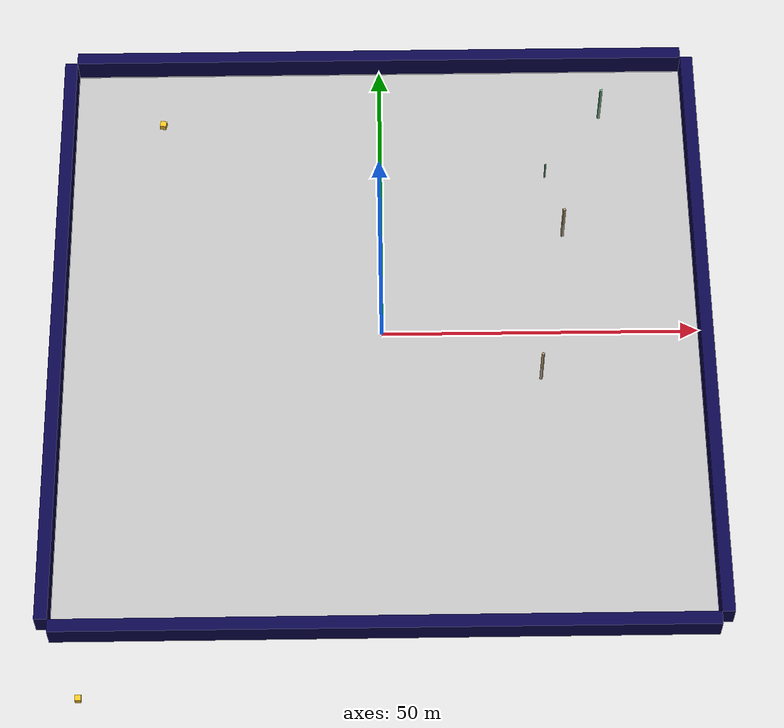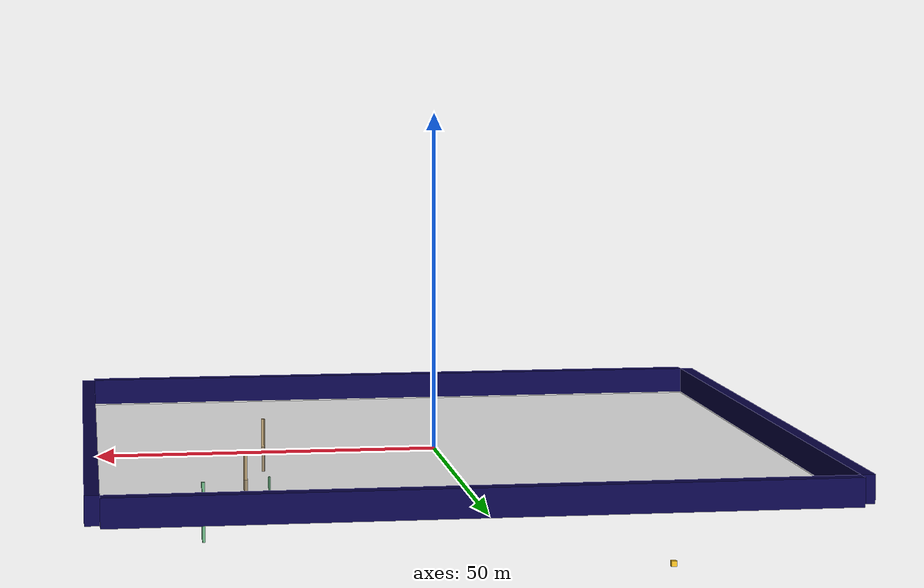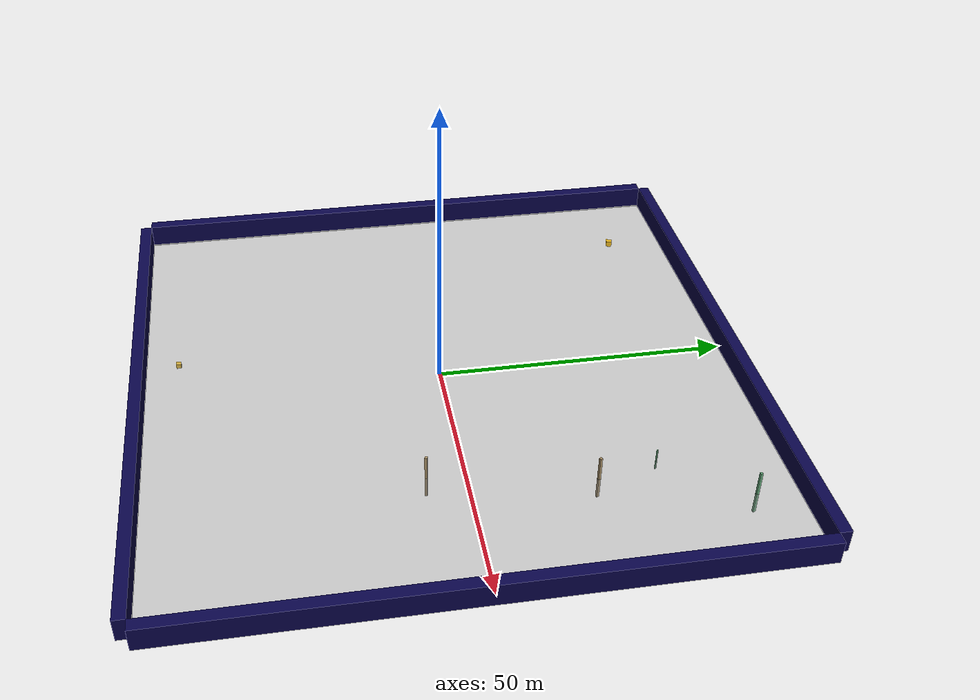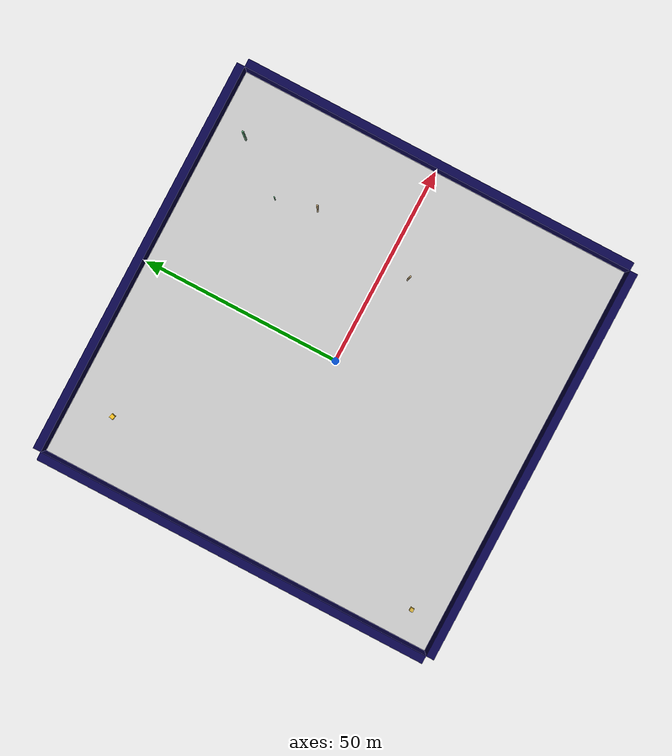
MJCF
<mujoco model="unnamed_model">
  <default>
    <default class="/" />
    <default class="border/" />
    <default class="border_1/" />
    <default class="border_2/" />
    <default class="border_3/" />
    <default class="placeholder/" />
    <default class="agent/" />
    <default class="tree0/" />
    <default class="tree1/" />
    <default class="stone/" />
    <default class="stone_1/" />
  </default>
  <worldbody>
    <body name="border/">
      <body name="border/border" pos="0 51 2">
        <geom name="border/border_geom" class="border/" type="box" size="50.0 1.0 2.0" rgba="0.035 0.016 0.29 1.0" />
      </body>
    </body>
    <body name="border_1/">
      <body name="border_1/border" pos="0 -51 2">
        <geom name="border_1/border_geom" class="border_1/" type="box" size="50.0 1.0 2.0" rgba="0.035 0.016 0.29 1.0" />
      </body>
    </body>
    <body name="border_2/">
      <body name="border_2/border" pos="51 0 2">
        <geom name="border_2/border_geom" class="border_2/" type="box" size="1.0 50.0 2.0" rgba="0.035 0.016 0.29 1.0" />
      </body>
    </body>
    <body name="border_3/">
      <body name="border_3/border" pos="-51 0 2">
        <geom name="border_3/border_geom" class="border_3/" type="box" size="1.0 50.0 2.0" rgba="0.035 0.016 0.29 1.0" />
      </body>
    </body>
    <body name="placeholder/">
      <body name="placeholder/placeholder" pos="-49 -49 -30">
        <geom name="placeholder/box_geom" class="placeholder/" type="box" size="0.5 0.5 0.5" rgba="0.949 0.7451 0.1333 1.0" euler="0 0 0" />
      </body>
    </body>
    <body euler="0 0 -101.50525167961115" name="agent/">
      <joint name="agent/boxagent_freeJoint/" class="/" type="free" />
      <body name="agent/agent" pos="-31.95055 -42.923000000000002 0.5" euler="0 0 0">
        <geom name="agent/boxagent_geom" class="agent/" type="box" size="0.5 0.5 0.5" rgba="0.949 0.7451 0.1333 1.0" euler="0 0 0" />
        <camera name="agent/boxagent_camera" class="agent/" pos="1 0 0.5" euler="90 0 0" />
      </body>
    </body>
    <body name="tree0/">
      <body name="tree0/tree0" pos="26.980749999999997 30.353000000000009 0.10000000000000001" euler="0 0 119.55216989808287">
        <geom name="tree0/tree_geom" class="tree0/" type="box" size="0.1 0.1 2.0" rgba="0.396078431372549 0.6705882352941176 0.48627450980392156 1.0" />
      </body>
    </body>
    <body name="tree1/">
      <body name="tree1/tree1" pos="36.57255 43.420299999999983 0.10000000000000001" euler="0 0 -171.45073394827062">
        <geom name="tree1/tree_geom" class="tree1/" type="box" size="0.2 0.2 4.0" rgba="0.396078431372549 0.6705882352941176 0.48627450980392156 1.0" />
      </body>
    </body>
    <body name="stone/">
      <body name="stone/stone" pos="29.559699999999999 20.353300000000004 0.10000000000000001" euler="0 0 -69.53180308673015">
        <geom name="stone/stone_geom" class="stone/" type="box" size="0.2 0.2 4.0" rgba="0.6980392156862745 0.6 0.43137254901960786 1.0" />
      </body>
    </body>
    <body name="stone_1/">
      <body name="stone_1/stone" pos="25.144500000000004 -6.109499999999997 0.10000000000000001" euler="0 0 157.50419137505389">
        <geom name="stone_1/stone_geom" class="stone_1/" type="box" size="0.2 0.2 4.0" rgba="0.6980392156862745 0.6 0.43137254901960786 1.0" />
      </body>
    </body>
    <geom name="base_plane" class="/" type="plane" size="50 50 0.10000000000000001" />
  </worldbody>
</mujoco>
